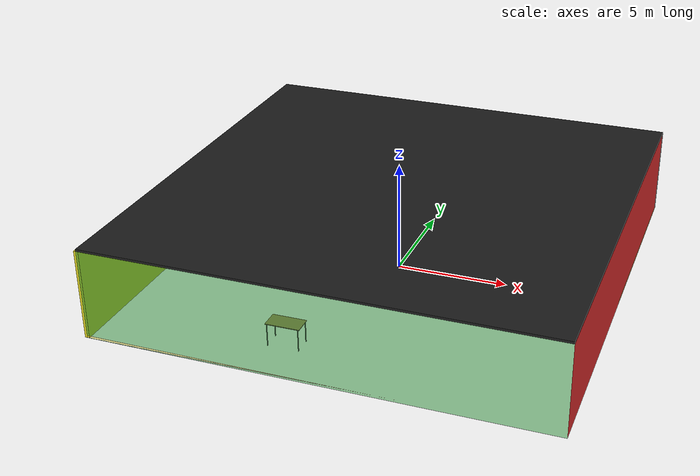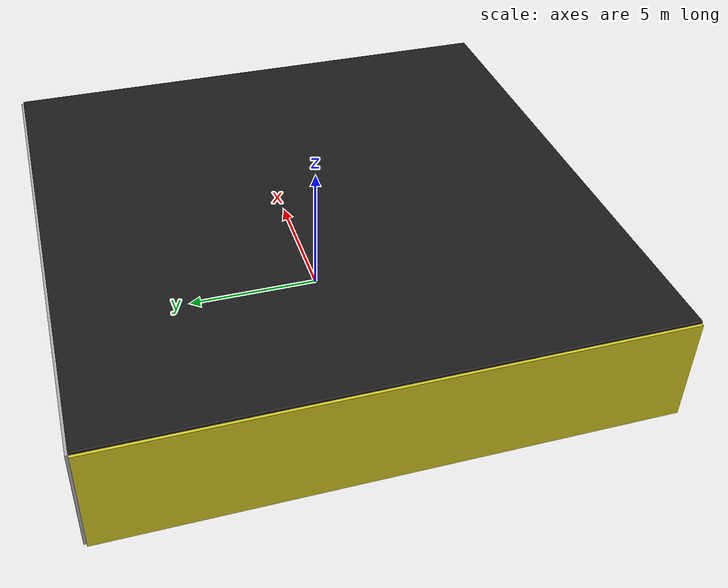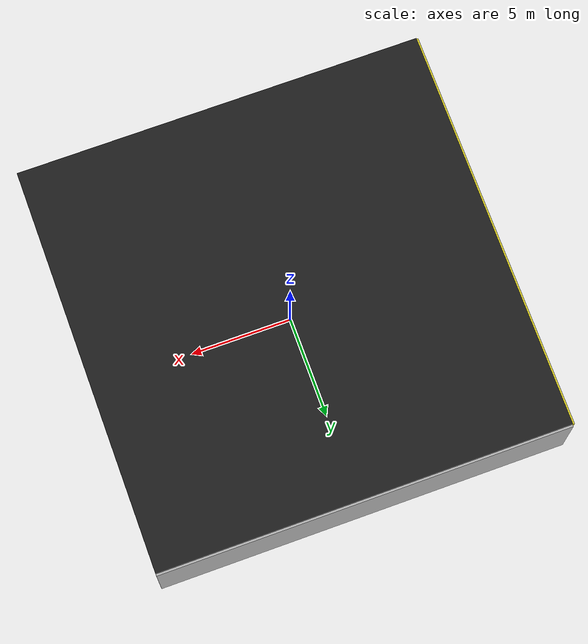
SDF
<sdf version="1.4">
 <world name="default">
  <physics type="ode">
   <max_step_size>0.001</max_step_size>
   <real_time_factor>1</real_time_factor>
   <real_time_update_rate>1000</real_time_update_rate>
   <gravity>0 0 -9.8</gravity>
  </physics>
  <scene><ambient>0.4 0.4 0.4 1</ambient><background>0.7 0.7 0.7 1</background><shadows>1</shadows></scene>
  <model name="Surrounding">
   <static>1</static>
   <link name="Ceiling">
    <collision name="Ceiling_Collision"><geometry><box><size>20 20 0.1</size></box></geometry></collision>
    <visual name="Ceiling_Visual">
     <geometry><box><size>20 20 0.1</size></box></geometry>
     <material>
      <script><uri>file://media/materials/scripts/gazebo.material</uri><name>Gazebo/Black</name></script>
     </material>
    </visual>
    <pose>0 0 4.05 0 0 0</pose>
   </link>
   <link name="Wall_South">
    <collision name="Wall_South_Collision">
     <geometry><box><size>20 0 4</size></box></geometry>
     <pose>0 0 2 0 -0 0</pose>
    </collision>
    <visual name="Wall_South_Visual">
     <pose>0 0 2 0 -0 0</pose>
     <geometry><box><size>20 0 4</size></box></geometry>
     <material>
      <script><uri>file://media/materials/scripts/gazebo.material</uri><name>Gazebo/GreenTransparent</name></script>
     </material>
    </visual>
    <velocity_decay><linear>0</linear><angular>0</angular></velocity_decay>
    <pose>0 -10 0 0 -0 0</pose>
   </link>
   <link name="Wall_East">
    <collision name="Wall_21_Collision">
     <geometry><box><size>20 0 4</size></box></geometry>
     <pose>0 0 2 0 -0 0</pose>
    </collision>
    <visual name="Wall_21_Visual">
     <pose>0 0 2 0 -0 0</pose>
     <geometry><box><size>20 0 4</size></box></geometry>
     <material>
      <script><uri>file://media/materials/scripts/gazebo.material</uri><name>Gazebo/Red</name></script>
     </material>
    </visual>
    <velocity_decay><linear>0</linear><angular>0</angular></velocity_decay>
    <pose>10 0 0 0 -0 1.5708</pose>
   </link>
   <link name="Wall_North">
    <collision name="Wall_22_Collision">
     <geometry><box><size>20 0.2 4</size></box></geometry>
     <pose>0 0 2 0 -0 0</pose>
    </collision>
    <visual name="Wall_22_Visual">
     <pose>0 0 2 0 -0 0</pose>
     <geometry><box><size>20 0.2 4</size></box></geometry>
     <material>
      <script><uri>file://media/materials/scripts/gazebo.material</uri><name>Gazebo/LightOff</name></script>
     </material>
    </visual>
    <velocity_decay><linear>0</linear><angular>0</angular></velocity_decay>
    <pose>0 10 0 0 -0 0</pose>
   </link>
   <link name="Wall_West">
    <collision name="Wall_23_Collision">
     <geometry><box><size>20 0.2 4</size></box></geometry>
     <pose>0 0 2 0 -0 0</pose>
    </collision>
    <visual name="Wall_23_Visual">
     <pose>0 0 2 0 -0 0</pose>
     <geometry><box><size>20 0.2 4</size></box></geometry>
     <material>
      <script><uri>file://media/materials/scripts/gazebo.material</uri><name>Gazebo/Yellow</name></script>
     </material>
    </visual>
    <velocity_decay><linear>0</linear><angular>0</angular></velocity_decay>
    <pose>-10 0 0 0 0 -1.5708</pose>
   </link>
   <link name="Ground_link">
    <collision name="collision">
     <pose>0 0 .05 0 -0 0</pose>
     <geometry><box><size>20 20 0.1</size></box></geometry>
    </collision>
    <visual name="visual">
     <pose>0 0 .05 0 -0 0</pose>
     <geometry><box><size>20 20 0.1</size></box></geometry>
     <material>
      <script>
       <uri>file://media/materials/scripts/gazebo.material</uri>
       <name>Gazebo/YellowTransparent</name>
      </script>
     </material>
    </visual>
   </link>
   <static>1</static>
  </model>
  <spherical_coordinates>
   <surface_model>EARTH_WGS84</surface_model>
   <latitude_deg>0</latitude_deg>
   <longitude_deg>0</longitude_deg>
   <elevation>0</elevation>
   <heading_deg>0</heading_deg>
  </spherical_coordinates>
  <light name="lightball_0" type="diffuse">
   <diffuse>0.8 0.8 0.8 1</diffuse>
   <specular>0.2 0.2 0.2 1</specular>
   <attenuation>
    <range>100</range>
    <constant>0.7</constant>
    <linear>0.01</linear>
    <quadratic>0.001</quadratic>
   </attenuation>
   <direction>-0.5 0.1 -0.9</direction>
   <pose>-2.92133011659 5.05260745865 0.610890964495 0 0 0</pose>
  </light>
  <light name="lightball_1" type="diffuse">
   <diffuse>0.8 0.8 0.8 1</diffuse>
   <specular>0.2 0.2 0.2 1</specular>
   <attenuation>
    <range>100</range>
    <constant>0.7</constant>
    <linear>0.01</linear>
    <quadratic>0.001</quadratic>
   </attenuation>
   <direction>-0.5 0.1 -0.9</direction>
   <pose>-0.691632422382 -4.30876540739 1.23969224897 0 0 0</pose>
  </light>
  <light name="lightball_2" type="diffuse">
   <diffuse>0.8 0.8 0.8 1</diffuse>
   <specular>0.2 0.2 0.2 1</specular>
   <attenuation>
    <range>100</range>
    <constant>0.7</constant>
    <linear>0.01</linear>
    <quadratic>0.001</quadratic>
   </attenuation>
   <direction>-0.5 0.1 -0.9</direction>
   <pose>8.66157661208 -8.56482990283 1.58240987448 0 0 0</pose>
  </light>
  <light name="lightball_3" type="diffuse">
   <diffuse>0.8 0.8 0.8 1</diffuse>
   <specular>0.2 0.2 0.2 1</specular>
   <attenuation>
    <range>100</range>
    <constant>0.7</constant>
    <linear>0.01</linear>
    <quadratic>0.001</quadratic>
   </attenuation>
   <direction>-0.5 0.1 -0.9</direction>
   <pose>-0.197664410859 -7.07284121313 1.77378898797 0 0 0</pose>
  </light>
  <light name="lightball_4" type="diffuse">
   <diffuse>0.8 0.8 0.8 1</diffuse>
   <specular>0.2 0.2 0.2 1</specular>
   <attenuation>
    <range>100</range>
    <constant>0.7</constant>
    <linear>0.01</linear>
    <quadratic>0.001</quadratic>
   </attenuation>
   <direction>-0.5 0.1 -0.9</direction>
   <pose>6.39241449824 0.474465628315 3.45567958375 0 0 0</pose>
  </light>
  <include><uri>model://cabinet</uri><pose>-7.18530419376 1.44631208727 0 0 0 0.610924087665</pose></include>
  <include><uri>model://table</uri><pose>-2.11919825524 -7.63993924706 0 0 0 0.00959981621087</pose></include>
  <include><uri>model://cabinet</uri><pose>1.55121082411 -1.58478103415 0 0 0 2.10352458284</pose></include>
  <include><uri>model://cabinet</uri><pose>5.23727412263 1.66172879107 0 0 0 0.29866564481</pose></include>
 </world>
</sdf>

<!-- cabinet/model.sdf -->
<sdf version="1.5">
  <model name="cabinet">
    <static>true</static>
    <link name="cabinet_bottom_plate">
      <inertial>
        <pose>0 0 -1 0 0 0</pose>
        <inertia>
          <ixx>2.050000</ixx>
          <ixy>0</ixy>
          <ixz>0</ixz>
          <iyy>2.050000</iyy>
          <iyz>0</iyz>
          <izz>2.050000</izz>
        </inertia>
        <mass>25.000000</mass>
      </inertial>
      <collision name="cabinet_bottom_plate_geom">
        <pose>0 0 0.010000 0 0 0</pose>
        <geometry>
          <box>
            <size>0.450000 0.450000 0.020000</size>
          </box>
        </geometry>
      </collision>
      <visual name="cabinet_bottom_plate_geom_visual">
        <pose>0 0 0.010000 0 0 0</pose>
        <geometry>
          <box>
            <size>0.450000 0.450000 0.020000</size>
          </box>
        </geometry>
        <material>
          <script>
            <uri>model://media/materials/scripts/gazebo.material</uri>
            <name>Gazebo/Wood</name>
          </script>
        </material>
      </visual>
      <collision name="cabinet_bottom_plate_geom_cabinet_back_plate">
        <pose>0.235000 0 0.510000 0 0 0</pose>
        <geometry>
          <box>
            <size>0.020000 0.450000 1.020000</size>
          </box>
        </geometry>
      </collision>
      <visual name="cabinet_bottom_plate_geom_cabinet_back_plate_visual">
        <pose>0.235000 0 0.510000 0 0 0</pose>
        <geometry>
          <box>
            <size>0.020000 0.450000 1.020000</size>
          </box>
        </geometry>
        <material>
          <script>
            <uri>model://media/materials/scripts/gazebo.material</uri>
            <name>Gazebo/Wood</name>
          </script>
        </material>
      </visual>
      <collision name="cabinet_bottom_plate_geom_cabinet_left_plate">
        <pose>0 0.235000 0.510000 0 0 0</pose>
        <geometry>
          <box>
            <size>0.450000 0.020000 1.020000</size>
          </box>
        </geometry>
      </collision>
      <visual name="cabinet_bottom_plate_geom_cabinet_left_plate_visual">
        <pose>0 0.235000 0.510000 0 0 0</pose>
        <geometry>
          <box>
            <size>0.450000 0.020000 1.020000</size>
          </box>
        </geometry>
        <material>
          <script>
            <uri>model://media/materials/scripts/gazebo.material</uri>
            <name>Gazebo/Wood</name>
          </script>
        </material>
      </visual>
      <collision name="cabinet_bottom_plate_geom_cabinet_middle_plate">
        <pose>0 0 0.510000 0 0 0</pose>
        <geometry>
          <box>
            <size>0.450000 0.450000 0.020000</size>
          </box>
        </geometry>
      </collision>
      <visual name="cabinet_bottom_plate_geom_cabinet_middle_plate_visual">
        <pose>0 0 0.510000 0 0 0</pose>
        <geometry>
          <box>
            <size>0.450000 0.450000 0.020000</size>
          </box>
        </geometry>
        <material>
          <script>
            <uri>model://media/materials/scripts/gazebo.material</uri>
            <name>Gazebo/Wood</name>
          </script>
        </material>
      </visual>
      <collision name="cabinet_bottom_plate_geom_cabinet_right_plate">
        <pose>0 -0.235000 0.510000 0 0 0</pose>
        <geometry>
          <box>
            <size>0.450000 0.020000 1.020000</size>
          </box>
        </geometry>
      </collision>
      <visual name="cabinet_bottom_plate_geom_cabinet_right_plate_visual">
        <pose>0 -0.235000 0.510000 0 0 0</pose>
        <geometry>
          <box>
            <size>0.450000 0.020000 1.020000</size>
          </box>
        </geometry>
        <material>
          <script>
            <uri>model://media/materials/scripts/gazebo.material</uri>
            <name>Gazebo/Wood</name>
          </script>
        </material>
      </visual>
      <collision name="cabinet_bottom_plate_geom_cabinet_top_plate">
        <pose>0 0 1.010000 0 0 0</pose>
        <geometry>
          <box>
            <size>0.450000 0.450000 0.020000</size>
          </box>
        </geometry>
      </collision>
      <visual name="cabinet_bottom_plate_geom_cabinet_top_plate_visual">
        <pose>0 0 1.010000 0 0 0</pose>
        <geometry>
          <box>
            <size>0.450000 0.450000 0.020000</size>
          </box>
        </geometry>
        <material>
          <script>
            <uri>model://media/materials/scripts/gazebo.material</uri>
            <name>Gazebo/Wood</name>
          </script>
        </material>
      </visual>
    </link>
  </model>
</sdf>

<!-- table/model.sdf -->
<sdf version="1.5">
  <model name="table">
    <static>true</static>
    <link name="link">
      <collision name="surface">
        <pose>0 0 1.0 0 0 0</pose>
        <geometry>
          <box>
            <size>1.5 0.8 0.03</size>
          </box>
        </geometry>
        <surface>
          <friction>
            <ode>
              <mu>0.6</mu>
              <mu2>0.6</mu2>
            </ode>
          </friction>
        </surface>
      </collision>
      <visual name="visual1">
        <pose>0 0 1.0 0 0 0</pose>
        <geometry>
          <box>
            <size>1.5 0.8 0.03</size>
          </box>
        </geometry>
        <material>
          <script>
            <uri>model://media/materials/scripts/gazebo.material</uri>
            <name>Gazebo/Wood</name>
          </script>
        </material>
      </visual>
      <collision name="front_left_leg">
        <pose>0.68 0.38 0.5 0 0 0</pose>
        <geometry>
          <cylinder>
            <radius>0.02</radius>
            <length>1.0</length>
          </cylinder>
        </geometry>
      </collision>
      <visual name="front_left_leg">
        <pose>0.68 0.38 0.5 0 0 0</pose>
        <geometry>
          <cylinder>
            <radius>0.02</radius>
            <length>1.0</length>
          </cylinder>
        </geometry>
        <material>
          <script>
            <uri>model://media/materials/scripts/gazebo.material</uri>
            <name>Gazebo/Grey</name>
          </script>
        </material>
      </visual>
      <collision name="front_right_leg">
        <pose>0.68 -0.38 0.5 0 0 0</pose>
        <geometry>
          <cylinder>
            <radius>0.02</radius>
            <length>1.0</length>
          </cylinder>
        </geometry>
      </collision>
      <visual name="front_right_leg">
        <pose>0.68 -0.38 0.5 0 0 0</pose>
        <geometry>
          <cylinder>
            <radius>0.02</radius>
            <length>1.0</length>
          </cylinder>
        </geometry>
        <material>
          <script>
            <uri>model://media/materials/scripts/gazebo.material</uri>
            <name>Gazebo/Grey</name>
          </script>
        </material>
      </visual>
      <collision name="back_right_leg">
        <pose>-0.68 -0.38 0.5 0 0 0</pose>
        <geometry>
          <cylinder>
            <radius>0.02</radius>
            <length>1.0</length>
          </cylinder>
        </geometry>
      </collision>
      <visual name="back_right_leg">
        <pose>-0.68 -0.38 0.5 0 0 0</pose>
        <geometry>
          <cylinder>
            <radius>0.02</radius>
            <length>1.0</length>
          </cylinder>
        </geometry>
        <material>
          <script>
            <uri>model://media/materials/scripts/gazebo.material</uri>
            <name>Gazebo/Grey</name>
          </script>
        </material>
      </visual>
      <collision name="back_left_leg">
        <pose>-0.68 0.38 0.5 0 0 0</pose>
        <geometry>
          <cylinder>
            <radius>0.02</radius>
            <length>1.0</length>
          </cylinder>
        </geometry>
      </collision>
      <visual name="back_left_leg">
        <pose>-0.68 0.38 0.5 0 0 0</pose>
        <geometry>
          <cylinder>
            <radius>0.02</radius>
            <length>1.0</length>
          </cylinder>
        </geometry>
        <material>
          <script>
            <uri>model://media/materials/scripts/gazebo.material</uri>
            <name>Gazebo/Grey</name>
          </script>
        </material>
      </visual>
    </link>
  </model>
</sdf>
